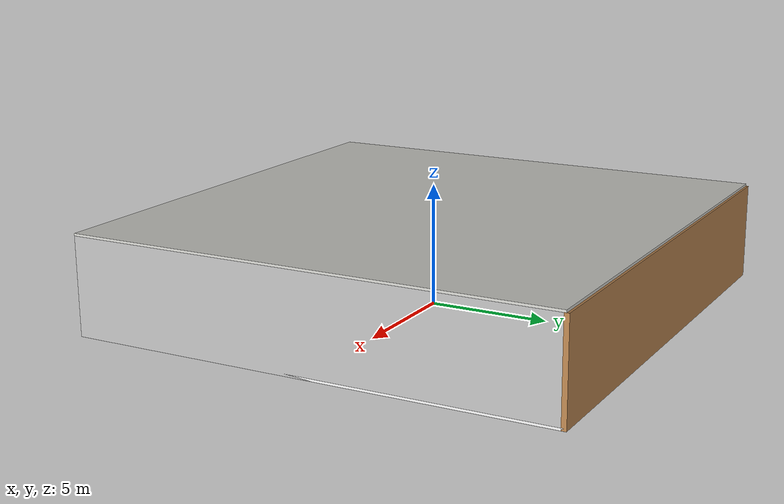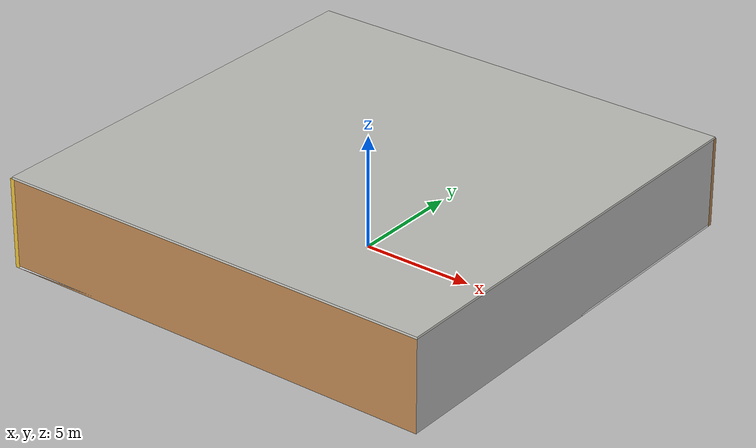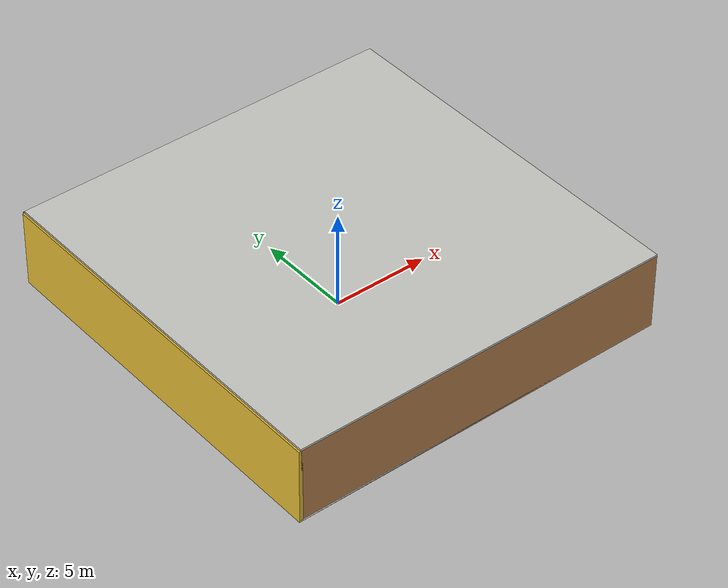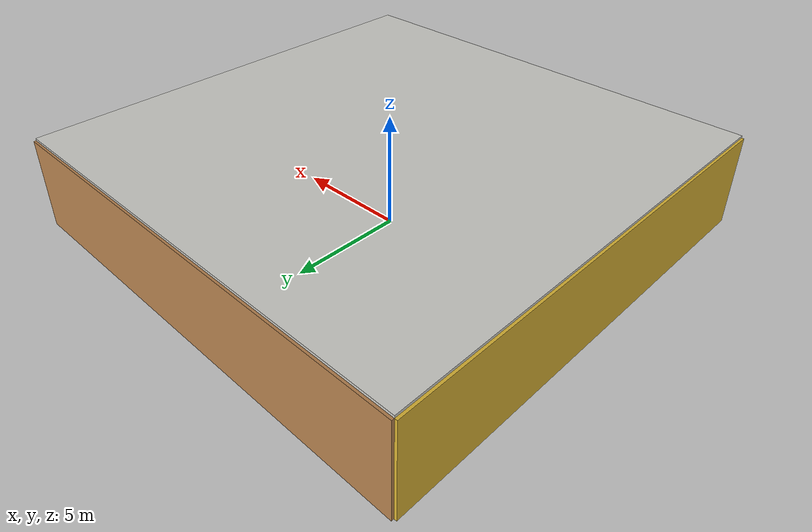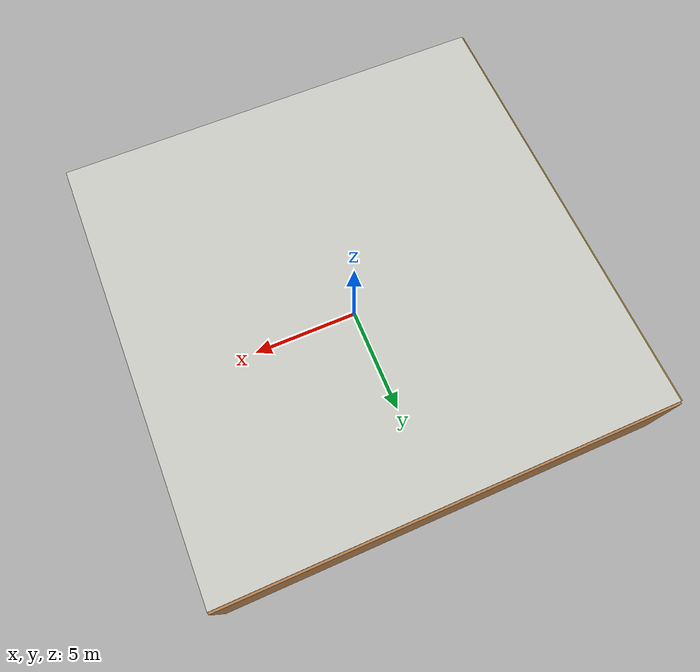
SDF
<sdf version="1.4">
 <world name="default">
  <physics type="ode">
   <max_step_size>0.001</max_step_size>
   <real_time_factor>1</real_time_factor>
   <real_time_update_rate>1000</real_time_update_rate>
   <gravity>0 0 -9.8</gravity>
  </physics>
  <scene><ambient>0.4 0.4 0.4 1</ambient><background>0.7 0.7 0.7 1</background><shadows>1</shadows></scene>
  <model name="Surrounding">
   <static>1</static>
   <link name="Ceiling">
    <collision name="Ceiling_Collision"><geometry><box><size>20 20 0.1</size></box></geometry></collision>
    <visual name="Ceiling_Visual">
     <geometry><box><size>20 20 0.1</size></box></geometry>
     <material>
      <script><uri>file://media/materials/scripts/gazebo.material</uri><name>Gazebo/CeilingTiled</name></script>
     </material>
    </visual>
    <pose>0 0 4.05 0 0 0</pose>
   </link>
   <link name="Wall_South">
    <collision name="Wall_South_Collision">
     <geometry><box><size>20 0 4</size></box></geometry>
     <pose>0 0 2 0 -0 0</pose>
    </collision>
    <visual name="Wall_South_Visual">
     <pose>0 0 2 0 -0 0</pose>
     <geometry><box><size>20 0 4</size></box></geometry>
     <material>
      <script><uri>file://media/materials/scripts/gazebo.material</uri><name>Gazebo/Wood</name></script>
     </material>
    </visual>
    <velocity_decay><linear>0</linear><angular>0</angular></velocity_decay>
    <pose>0 -10 0 0 -0 0</pose>
   </link>
   <link name="Wall_East">
    <collision name="Wall_21_Collision">
     <geometry><box><size>20 0 4</size></box></geometry>
     <pose>0 0 2 0 -0 0</pose>
    </collision>
    <visual name="Wall_21_Visual">
     <pose>0 0 2 0 -0 0</pose>
     <geometry><box><size>20 0 4</size></box></geometry>
     <material>
      <script><uri>file://media/materials/scripts/gazebo.material</uri><name>Gazebo/PioneerBody</name></script>
     </material>
    </visual>
    <velocity_decay><linear>0</linear><angular>0</angular></velocity_decay>
    <pose>10 0 0 0 -0 1.5708</pose>
   </link>
   <link name="Wall_North">
    <collision name="Wall_22_Collision">
     <geometry><box><size>20 0.2 4</size></box></geometry>
     <pose>0 0 2 0 -0 0</pose>
    </collision>
    <visual name="Wall_22_Visual">
     <pose>0 0 2 0 -0 0</pose>
     <geometry><box><size>20 0.2 4</size></box></geometry>
     <material>
      <script><uri>file://media/materials/scripts/gazebo.material</uri><name>Gazebo/WoodFloor</name></script>
     </material>
    </visual>
    <velocity_decay><linear>0</linear><angular>0</angular></velocity_decay>
    <pose>0 10 0 0 -0 0</pose>
   </link>
   <link name="Wall_West">
    <collision name="Wall_23_Collision">
     <geometry><box><size>20 0.2 4</size></box></geometry>
     <pose>0 0 2 0 -0 0</pose>
    </collision>
    <visual name="Wall_23_Visual">
     <pose>0 0 2 0 -0 0</pose>
     <geometry><box><size>20 0.2 4</size></box></geometry>
     <material>
      <script><uri>file://media/materials/scripts/gazebo.material</uri><name>Gazebo/Gold</name></script>
     </material>
    </visual>
    <velocity_decay><linear>0</linear><angular>0</angular></velocity_decay>
    <pose>-10 0 0 0 0 -1.5708</pose>
   </link>
   <link name="Ground_link">
    <collision name="collision">
     <pose>0 0 .05 0 -0 0</pose>
     <geometry><box><size>20 20 0.1</size></box></geometry>
    </collision>
    <visual name="visual">
     <pose>0 0 .05 0 -0 0</pose>
     <geometry><box><size>20 20 0.1</size></box></geometry>
     <material>
      <script><uri>file://media/materials/scripts/gazebo.material</uri><name>Gazebo/WhiteGlow</name></script>
     </material>
    </visual>
   </link>
   <static>1</static>
  </model>
  <spherical_coordinates>
   <surface_model>EARTH_WGS84</surface_model>
   <latitude_deg>0</latitude_deg>
   <longitude_deg>0</longitude_deg>
   <elevation>0</elevation>
   <heading_deg>0</heading_deg>
  </spherical_coordinates>
  <light name="lightball_0" type="diffuse">
   <diffuse>0.8 0.8 0.8 1</diffuse>
   <specular>0.2 0.2 0.2 1</specular>
   <attenuation>
    <range>100</range>
    <constant>0.7</constant>
    <linear>0.01</linear>
    <quadratic>0.001</quadratic>
   </attenuation>
   <direction>-0.5 0.1 -0.9</direction>
   <pose>8.33787147705 3.58952950159 3.891171843 0 0 0</pose>
  </light>
  <light name="lightball_1" type="diffuse">
   <diffuse>0.8 0.8 0.8 1</diffuse>
   <specular>0.2 0.2 0.2 1</specular>
   <attenuation>
    <range>100</range>
    <constant>0.7</constant>
    <linear>0.01</linear>
    <quadratic>0.001</quadratic>
   </attenuation>
   <direction>-0.5 0.1 -0.9</direction>
   <pose>1.970155551 -3.03763418531 2.10481021372 0 0 0</pose>
  </light>
  <light name="lightball_2" type="diffuse">
   <diffuse>0.8 0.8 0.8 1</diffuse>
   <specular>0.2 0.2 0.2 1</specular>
   <attenuation>
    <range>100</range>
    <constant>0.7</constant>
    <linear>0.01</linear>
    <quadratic>0.001</quadratic>
   </attenuation>
   <direction>-0.5 0.1 -0.9</direction>
   <pose>-7.13679787384 0.801172015122 0.663104621362 0 0 0</pose>
  </light>
  <light name="lightball_3" type="diffuse">
   <diffuse>0.8 0.8 0.8 1</diffuse>
   <specular>0.2 0.2 0.2 1</specular>
   <attenuation>
    <range>100</range>
    <constant>0.7</constant>
    <linear>0.01</linear>
    <quadratic>0.001</quadratic>
   </attenuation>
   <direction>-0.5 0.1 -0.9</direction>
   <pose>8.4382848695 -0.516137764884 0.748538540293 0 0 0</pose>
  </light>
  <include><uri>model://table</uri><pose>-4.47273744897 2.68044583208 0 0 0 0.38671230658</pose></include>
  <include><uri>model://cabinet</uri><pose>-3.53356971098 4.95524486897 0 0 0 2.9960559428</pose></include>
  <include><uri>model://cabinet</uri><pose>-1.72243358143 6.34104649931 0 0 0 2.4554497504</pose></include>
  <include><uri>model://cabinet</uri><pose>2.62827062926 8.67859404684 0 0 0 0.86315042995</pose></include>
 </world>
</sdf>

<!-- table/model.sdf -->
<sdf version="1.5">
  <model name="table">
    <static>true</static>
    <link name="link">
      <collision name="surface">
        <pose>0 0 1.0 0 0 0</pose>
        <geometry>
          <box>
            <size>1.5 0.8 0.03</size>
          </box>
        </geometry>
        <surface>
          <friction>
            <ode>
              <mu>0.6</mu>
              <mu2>0.6</mu2>
            </ode>
          </friction>
        </surface>
      </collision>
      <visual name="visual1">
        <pose>0 0 1.0 0 0 0</pose>
        <geometry>
          <box>
            <size>1.5 0.8 0.03</size>
          </box>
        </geometry>
        <material>
          <script>
            <uri>model://media/materials/scripts/gazebo.material</uri>
            <name>Gazebo/Wood</name>
          </script>
        </material>
      </visual>
      <collision name="front_left_leg">
        <pose>0.68 0.38 0.5 0 0 0</pose>
        <geometry>
          <cylinder>
            <radius>0.02</radius>
            <length>1.0</length>
          </cylinder>
        </geometry>
      </collision>
      <visual name="front_left_leg">
        <pose>0.68 0.38 0.5 0 0 0</pose>
        <geometry>
          <cylinder>
            <radius>0.02</radius>
            <length>1.0</length>
          </cylinder>
        </geometry>
        <material>
          <script>
            <uri>model://media/materials/scripts/gazebo.material</uri>
            <name>Gazebo/Grey</name>
          </script>
        </material>
      </visual>
      <collision name="front_right_leg">
        <pose>0.68 -0.38 0.5 0 0 0</pose>
        <geometry>
          <cylinder>
            <radius>0.02</radius>
            <length>1.0</length>
          </cylinder>
        </geometry>
      </collision>
      <visual name="front_right_leg">
        <pose>0.68 -0.38 0.5 0 0 0</pose>
        <geometry>
          <cylinder>
            <radius>0.02</radius>
            <length>1.0</length>
          </cylinder>
        </geometry>
        <material>
          <script>
            <uri>model://media/materials/scripts/gazebo.material</uri>
            <name>Gazebo/Grey</name>
          </script>
        </material>
      </visual>
      <collision name="back_right_leg">
        <pose>-0.68 -0.38 0.5 0 0 0</pose>
        <geometry>
          <cylinder>
            <radius>0.02</radius>
            <length>1.0</length>
          </cylinder>
        </geometry>
      </collision>
      <visual name="back_right_leg">
        <pose>-0.68 -0.38 0.5 0 0 0</pose>
        <geometry>
          <cylinder>
            <radius>0.02</radius>
            <length>1.0</length>
          </cylinder>
        </geometry>
        <material>
          <script>
            <uri>model://media/materials/scripts/gazebo.material</uri>
            <name>Gazebo/Grey</name>
          </script>
        </material>
      </visual>
      <collision name="back_left_leg">
        <pose>-0.68 0.38 0.5 0 0 0</pose>
        <geometry>
          <cylinder>
            <radius>0.02</radius>
            <length>1.0</length>
          </cylinder>
        </geometry>
      </collision>
      <visual name="back_left_leg">
        <pose>-0.68 0.38 0.5 0 0 0</pose>
        <geometry>
          <cylinder>
            <radius>0.02</radius>
            <length>1.0</length>
          </cylinder>
        </geometry>
        <material>
          <script>
            <uri>model://media/materials/scripts/gazebo.material</uri>
            <name>Gazebo/Grey</name>
          </script>
        </material>
      </visual>
    </link>
  </model>
</sdf>

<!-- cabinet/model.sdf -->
<sdf version="1.5">
  <model name="cabinet">
    <static>true</static>
    <link name="cabinet_bottom_plate">
      <inertial>
        <pose>0 0 -1 0 0 0</pose>
        <inertia>
          <ixx>2.050000</ixx>
          <ixy>0</ixy>
          <ixz>0</ixz>
          <iyy>2.050000</iyy>
          <iyz>0</iyz>
          <izz>2.050000</izz>
        </inertia>
        <mass>25.000000</mass>
      </inertial>
      <collision name="cabinet_bottom_plate_geom">
        <pose>0 0 0.010000 0 0 0</pose>
        <geometry>
          <box>
            <size>0.450000 0.450000 0.020000</size>
          </box>
        </geometry>
      </collision>
      <visual name="cabinet_bottom_plate_geom_visual">
        <pose>0 0 0.010000 0 0 0</pose>
        <geometry>
          <box>
            <size>0.450000 0.450000 0.020000</size>
          </box>
        </geometry>
        <material>
          <script>
            <uri>model://media/materials/scripts/gazebo.material</uri>
            <name>Gazebo/Wood</name>
          </script>
        </material>
      </visual>
      <collision name="cabinet_bottom_plate_geom_cabinet_back_plate">
        <pose>0.235000 0 0.510000 0 0 0</pose>
        <geometry>
          <box>
            <size>0.020000 0.450000 1.020000</size>
          </box>
        </geometry>
      </collision>
      <visual name="cabinet_bottom_plate_geom_cabinet_back_plate_visual">
        <pose>0.235000 0 0.510000 0 0 0</pose>
        <geometry>
          <box>
            <size>0.020000 0.450000 1.020000</size>
          </box>
        </geometry>
        <material>
          <script>
            <uri>model://media/materials/scripts/gazebo.material</uri>
            <name>Gazebo/Wood</name>
          </script>
        </material>
      </visual>
      <collision name="cabinet_bottom_plate_geom_cabinet_left_plate">
        <pose>0 0.235000 0.510000 0 0 0</pose>
        <geometry>
          <box>
            <size>0.450000 0.020000 1.020000</size>
          </box>
        </geometry>
      </collision>
      <visual name="cabinet_bottom_plate_geom_cabinet_left_plate_visual">
        <pose>0 0.235000 0.510000 0 0 0</pose>
        <geometry>
          <box>
            <size>0.450000 0.020000 1.020000</size>
          </box>
        </geometry>
        <material>
          <script>
            <uri>model://media/materials/scripts/gazebo.material</uri>
            <name>Gazebo/Wood</name>
          </script>
        </material>
      </visual>
      <collision name="cabinet_bottom_plate_geom_cabinet_middle_plate">
        <pose>0 0 0.510000 0 0 0</pose>
        <geometry>
          <box>
            <size>0.450000 0.450000 0.020000</size>
          </box>
        </geometry>
      </collision>
      <visual name="cabinet_bottom_plate_geom_cabinet_middle_plate_visual">
        <pose>0 0 0.510000 0 0 0</pose>
        <geometry>
          <box>
            <size>0.450000 0.450000 0.020000</size>
          </box>
        </geometry>
        <material>
          <script>
            <uri>model://media/materials/scripts/gazebo.material</uri>
            <name>Gazebo/Wood</name>
          </script>
        </material>
      </visual>
      <collision name="cabinet_bottom_plate_geom_cabinet_right_plate">
        <pose>0 -0.235000 0.510000 0 0 0</pose>
        <geometry>
          <box>
            <size>0.450000 0.020000 1.020000</size>
          </box>
        </geometry>
      </collision>
      <visual name="cabinet_bottom_plate_geom_cabinet_right_plate_visual">
        <pose>0 -0.235000 0.510000 0 0 0</pose>
        <geometry>
          <box>
            <size>0.450000 0.020000 1.020000</size>
          </box>
        </geometry>
        <material>
          <script>
            <uri>model://media/materials/scripts/gazebo.material</uri>
            <name>Gazebo/Wood</name>
          </script>
        </material>
      </visual>
      <collision name="cabinet_bottom_plate_geom_cabinet_top_plate">
        <pose>0 0 1.010000 0 0 0</pose>
        <geometry>
          <box>
            <size>0.450000 0.450000 0.020000</size>
          </box>
        </geometry>
      </collision>
      <visual name="cabinet_bottom_plate_geom_cabinet_top_plate_visual">
        <pose>0 0 1.010000 0 0 0</pose>
        <geometry>
          <box>
            <size>0.450000 0.450000 0.020000</size>
          </box>
        </geometry>
        <material>
          <script>
            <uri>model://media/materials/scripts/gazebo.material</uri>
            <name>Gazebo/Wood</name>
          </script>
        </material>
      </visual>
    </link>
  </model>
</sdf>
